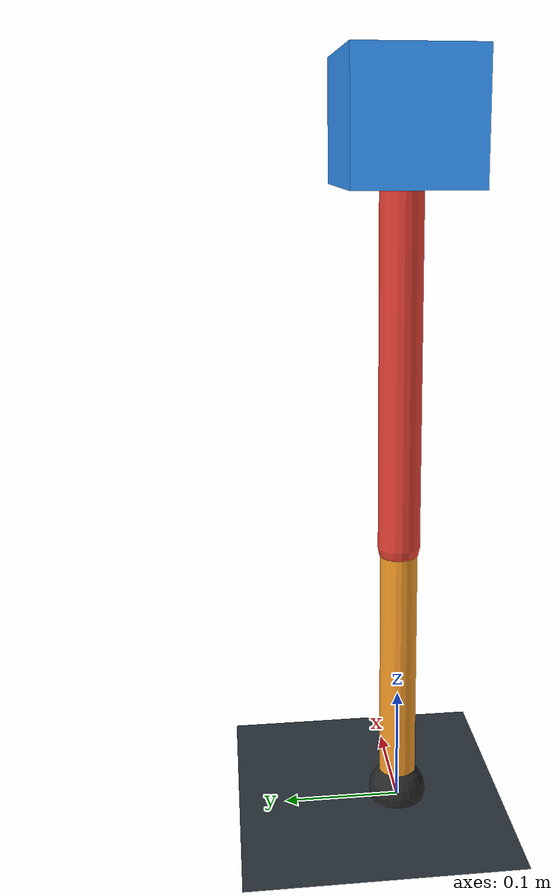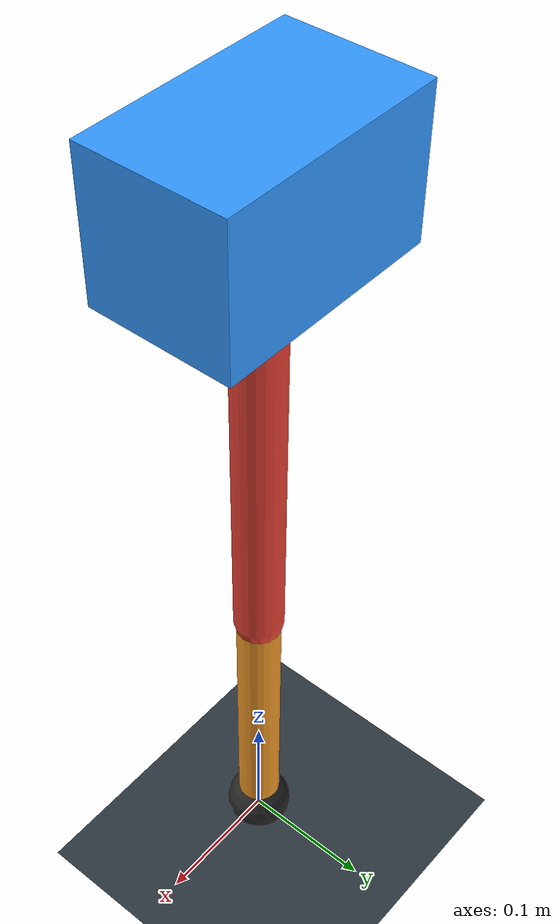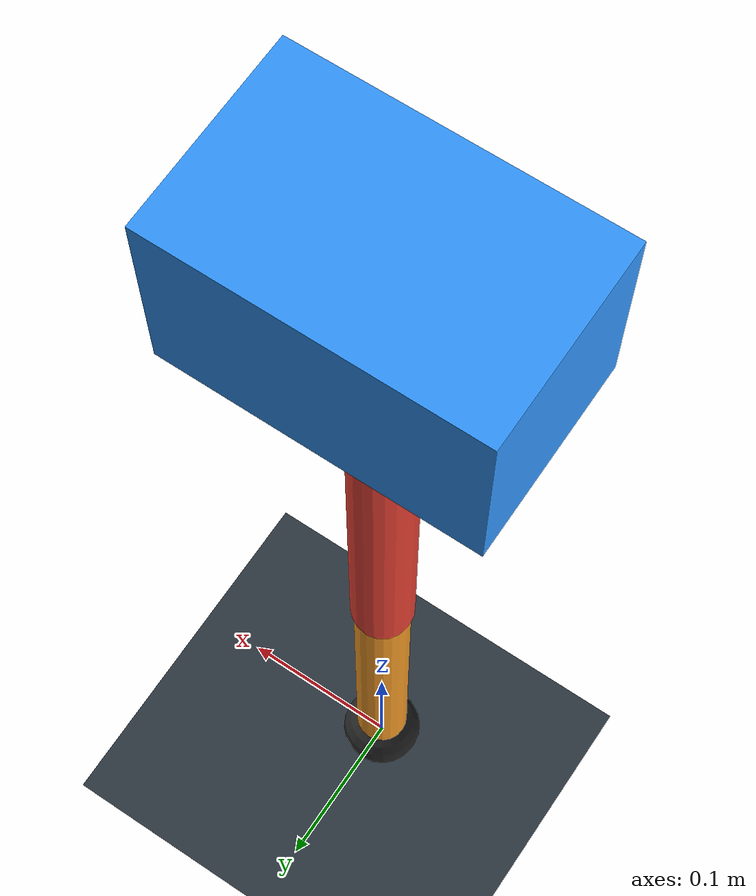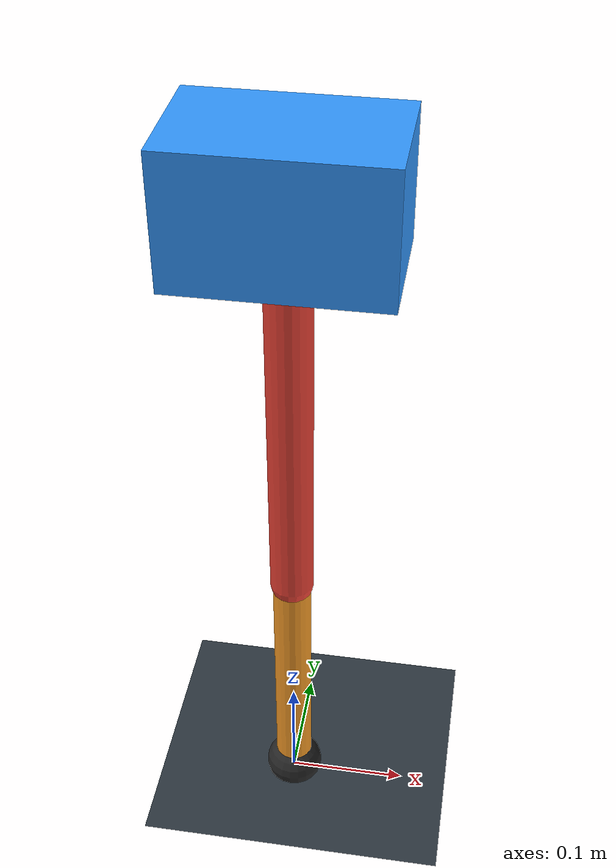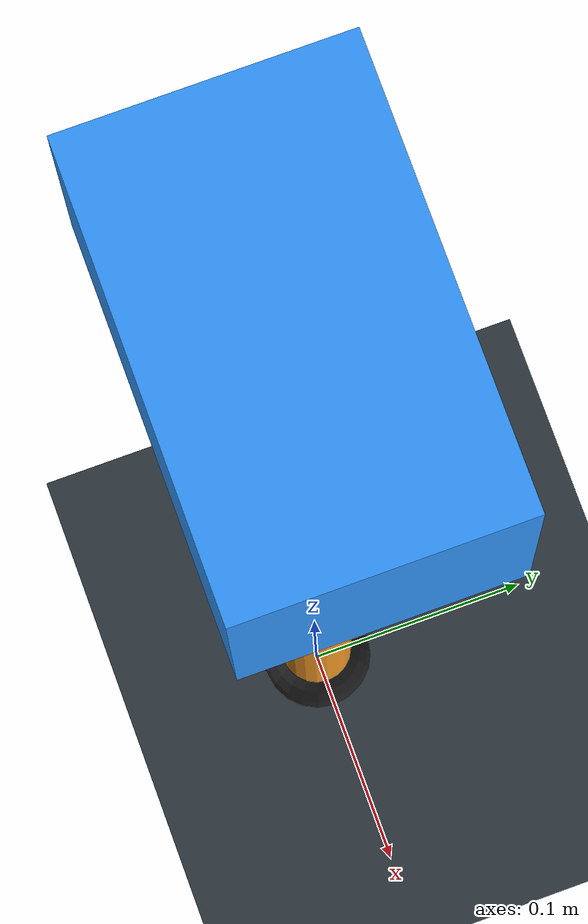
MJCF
<mujoco model="single_axis_two_bar">
  <compiler angle="radian" inertiafromgeom="true"/>
  <option timestep="0.001" integrator="implicitfast" gravity="0 0 -9.81"/>
  <default>
    <joint damping="0.08"/>
    <geom friction="1.2 0.01 0.0001" condim="3"/>
  </default>
  <worldbody>
    <geom name="floor" type="plane" size="5 5 0.1" rgba="0.18 0.22 0.25 1"/>
    <body name="carriage" pos="0 0 0.5844761045750672">
      <joint name="pole_slide" type="slide" axis="0 0 1"/>
      <geom name="payload" type="box" size="0.08 0.05 0.05" mass="2.5488406239118064" rgba="0.2 0.6 1 1"/>
      <body name="thigh" pos="0 0 0">
        <joint name="hip" type="hinge" axis="0 1 0"/>
        <geom name="thigh_link" type="capsule" fromto="0 0 0 0 0 -0.3471612175377789" size="0.018" mass="0.24735695482642456" rgba="0.9 0.25 0.2 1"/>
        <body name="shank" pos="0 0 -0.3471612175377789">
          <joint name="knee" type="hinge" axis="0 1 0"/>
          <geom name="shank_link" type="capsule" fromto="0 0 0 0 0 -0.22961827171486765" size="0.016" mass="0.1636060527346069" rgba="0.95 0.6 0.15 1"/>
          <geom name="foot" type="sphere" pos="0 0 -0.22961827171486765" size="0.025" mass="0.03" rgba="0.15 0.15 0.15 1"/>
          <site name="toe" pos="0 0 -0.22961827171486765" size="0.008"/>
        </body>
      </body>
    </body>
  </worldbody>
  <actuator>
    <motor name="hip_motor" joint="hip" ctrlrange="-31.0946291540152 31.0946291540152"/>
    <motor name="knee_motor" joint="knee" ctrlrange="-101.92093107765899 101.92093107765899"/>
  </actuator>
</mujoco>
